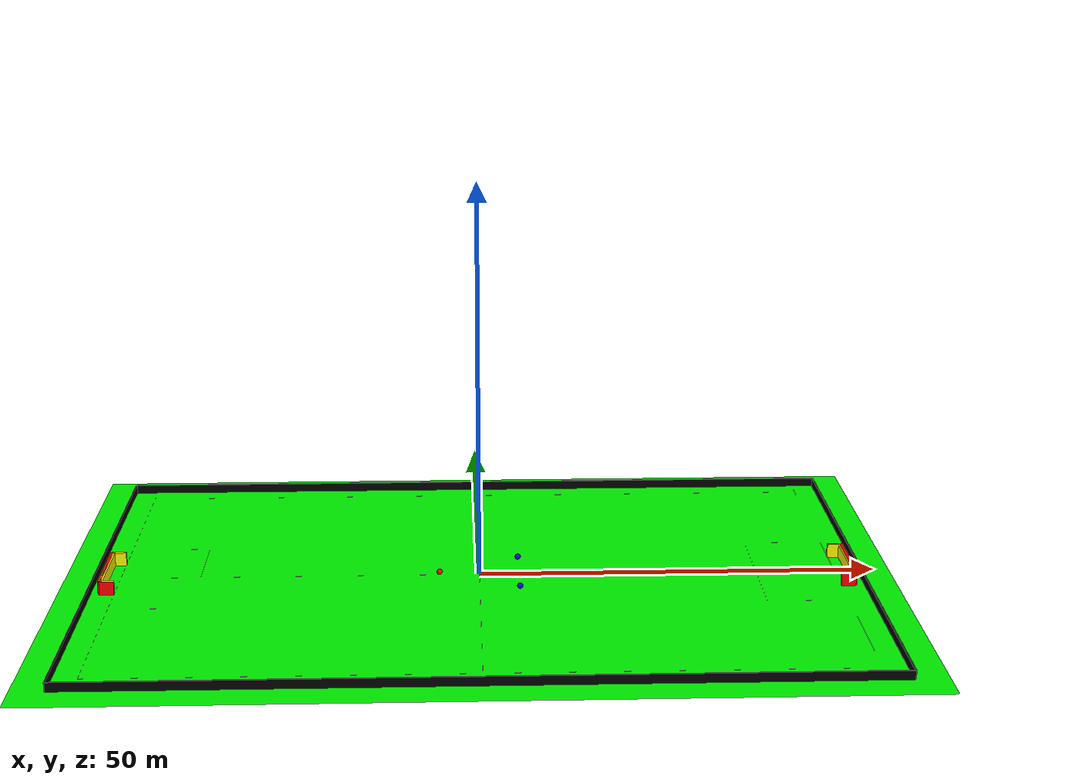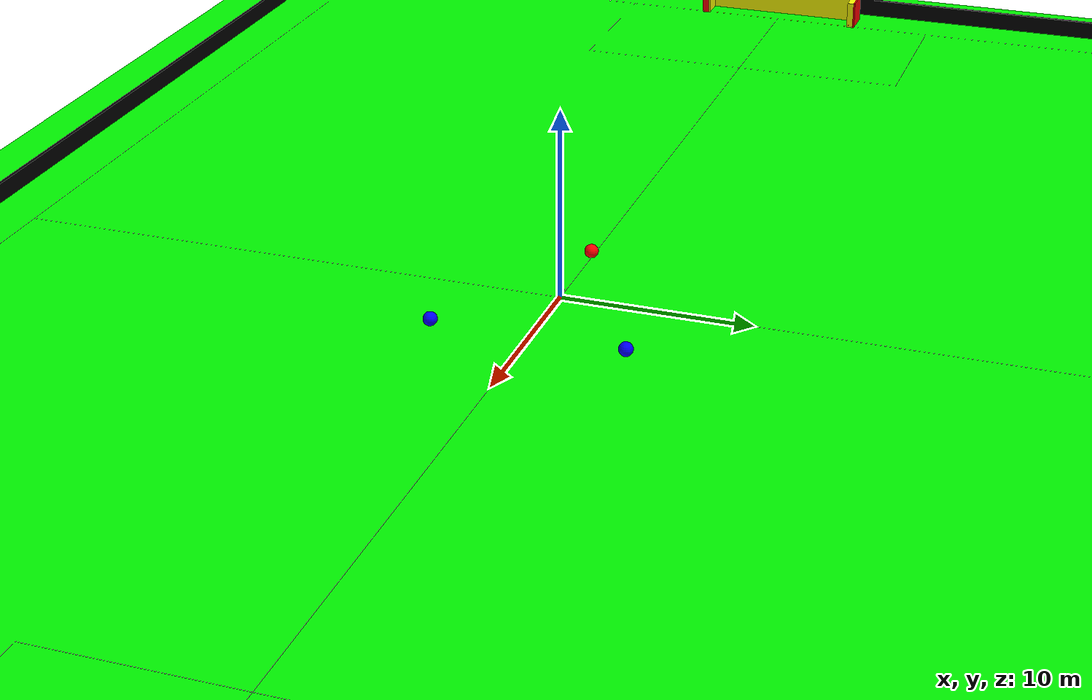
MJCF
<mujoco>

	<asset>
		<material name="floor" texture="checks1" texrepeat="2 2" texuniform="true"/>
		<texture name="checks1" builtin="checker" type='2d' width='256' height='256' rgb1="1 1 1" rgb2="0 0 0" />
		<material name="object" texture="checks2" texrepeat="2 2" texuniform="true"/>
		<texture name="checks2" builtin="checker" type='2d' width='256' height='256' rgb1="1 0 0" rgb2="0 1 0" />
	</asset>

	<default>
		<geom condim="3" friction="1 0.5 0.5"/>
	</default>

    <worldbody>
        <!--Stadium-->
        <geom name="stadium" type="plane" size="52 37 0.1" pos="0 0 0" rgba="0 1 0 1" />

        <!--Boundaries-->
        <body name="boundaries">
            <geom name="boundary_1" type="box" size="48 0.1 1" pos="0 33 0" rgba="0 0 0 1" />
            <geom name="boundary_2" type="box" size="48 0.1 1" pos="0 -33 0" rgba="0 0 0 1" />
            <geom name="boundary_3" type="box" size="33 0.1 1" pos="48 0 0" rgba="0 0 0 1" euler="0 0 90" />
            <geom name="boundary_4" type="box" size="33 0.1 1" pos="-48 0 0" rgba="0 0 0 1" euler="0 0 90" />
        </body>

        <!--Goal posts-->
        <!--Goal post 1-->
        <body name="Goal_post_1">
            <geom type="box" size="5 0.2 1.6" pos="46.8 0 0" rgba="1 0 0 1" euler="0 0 90" />
            <geom type="box" size="0.9 0.2 1.6" pos="45.9 5 0" rgba="1 0 0 1" />
            <geom type="box" size="0.9 0.2 1.6" pos="45.9 -5 0" rgba="1 0 0 1" />
            <site name="gp_11" type="box" size="5 0.2 1.6" pos="46.6 0 0" rgba="1 1 0 1" euler="0 0 90"/>
            <site name="gp_12" type="box" size="0.9 0.2 1.6" pos="45.9 4.9 0" rgba="1 1 0 1" />
            <site name="gp_13" type="box" size="0.9 0.2 1.6" pos="45.9 -4.9 0" rgba="1 1 0 1" />

        </body>

        <!--Goal post 2-->
        <body name="Goal_post_2">
            <geom type="box" size="5 0.2 1.6" pos="-46.8 0 0" rgba="1 0 0 1" euler="0 0 90" />
            <geom type="box" size="0.9 0.2 1.6" pos="-45.9 5 0" rgba="1 0 0 1" />
            <geom type="box" size="0.9 0.2 1.6" pos="-45.9 -5 0" rgba="1 0 0 1" />
            <site name="gp_21" type="box" size="5 0.2 1.6" pos="-46.6 0 0" rgba="1 1 0 1" euler="0 0 90"/>
            <site name="gp_22" type="box" size="0.9 0.2 1.6" pos="-45.9 4.9 0" rgba="1 1 0 1" />
            <site name="gp_23" type="box" size="0.9 0.2 1.6" pos="-45.9 -4.9 0" rgba="1 1 0 1" />
        </body>

        <!-- Field Markings -->
        <!-- Field Lines -->
        <body>
            <!-- Touch lines -->
            <geom name="Touch lines1" type="box" size="0.001 45 0.01" pos="0 30 0" rgba="255 255 255 1" euler="90 0 90"/>
            <geom name="Touch lines2" type="box" size="0.001 45 0.01" pos="0 -30 0" rgba="255 255 255 1" euler="90 0 90"/>
            <geom name="Touch lines3" type="box" size="0.001 13 0.01" pos="-45 -18 0" rgba="255 255 255 1" euler="0 90 0"/>
            <geom name="Touch lines4" type="box" size="0.001 13 0.01" pos="-45 18 0" rgba="255 255 255 1" euler="0 90 0"/>
            <geom name="Touch lines5" type="box" size="0.001 13 0.01" pos="45 -18 0" rgba="255 255 255 1" euler="0 90 0"/>
            <geom name="Touch lines6" type="box" size="0.001 13 0.01" pos="45 18 0" rgba="255 255 255 1" euler="0 90 0"/>
            <!-- Goal lines -->
            <geom name="Goal lines1" type="box" size="0.001 5 0.01" pos="45 0 0" rgba="255 255 0 1" euler="0 90 0"/>
            <geom name="Goal lines2" type="box" size="0.001 5 0.01" pos="-45 0 0" rgba="255 255 0 1" euler="0 90 0"/>
        </body>

        <!-- Halfway Lines -->
        <body>
            <!-- Halfway Line -->
            <geom name="Halfway Lines 1" type="box" size="0.001 30 0.01" pos="0 0 0" rgba="255 255 255 1" euler="0 90 0"/>

            <!-- Goal-to-Goal Line -->
            <geom name="Goal-to-Goal" type="box" size="0.001 45 0.01" pos="0 0 0" rgba="255 255 255 1" euler="90 0 90"/>
        </body>

        <!-- Defence area -->
        <body>
            <geom name="Defence area1" type="box" size="0.001 5 0.01" pos="40 10 0" rgba="255 255 255 1" euler="90 0 90"/>
            <geom name="Defence area2" type="box" size="0.001 5 0.01" pos="40 -10 0" rgba="255 255 255 1" euler="90 0 90"/>
            <geom name="Defence area3" type="box" size="0.001 10 0.01" pos="35 0 0" rgba="255 255 255 1" euler="0 90 0"/>
        </body>
        <body>
            <geom name="Defence area4" type="box" size="0.001 5 0.01" pos="-40 10 0" rgba="255 255 255 1" euler="90 0 90"/>
            <geom name="Defence area5" type="box" size="0.001 5 0.01" pos="-40 -10 0" rgba="255 255 255 1" euler="90 0 90"/>
            <geom name="Defence area6" type="box" size="0.001 10 0.01" pos="-35 0 0" rgba="255 255 255 1" euler="0 90 0"/>
        </body>

		<!-- Ball -->
        <body name="ball" pos="0 0 0.365">
            <geom name="ball_g" type="sphere" size="0.215"  rgba="1 0.647 0 1" mass="1" friction="1" />
            <joint type="free"/>
        </body>

		<!-- Team A -->
        <!-- Player 1 -->
        <body name="A_1" pos="5 5 0.365" >
            <geom name="a_1" type="sphere" size="0.365"  rgba="0 0 1 1"  mass="1" friction="1" />
            <joint type="free"/>
        </body>

		<!-- Player 2 -->
        <body name="A_2" pos="5 -5 0.365" >
            <geom name="a_2" type="sphere" size="0.365"  rgba="0 0 1 1"  mass="1" friction="1" />
            <joint type="free"/>
        </body>

		<!-- Team B -->
        <!-- Player 1 -->
        <body name="B_1" pos="-5 0 0.365" >
            <geom name="b_1" type="sphere" size="0.365"  rgba="1 0 0 1"  mass="1" friction="1" />
            <joint type="free"/>
        </body>

    </worldbody>

</mujoco>
